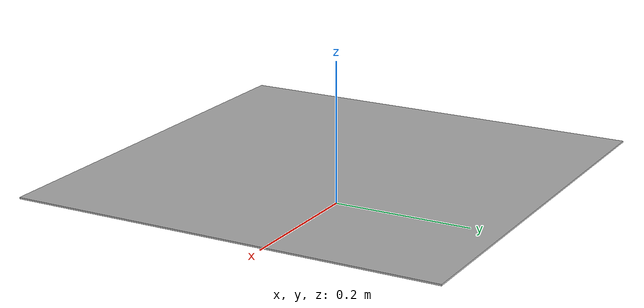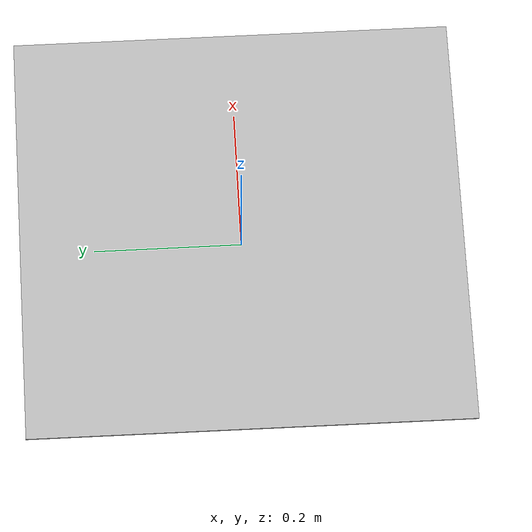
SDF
<?xml version="1.0" ?>
<sdf version="1.5">
  <model name="qrcode_cube_10cm">
    <link name="link">
      <pose>0 0 0.05 0 0 0</pose>
      <inertial>
        <mass>0.5167</mass>
        <inertia>
          <ixx>0.0008611666666666669</ixx>
          <ixy>0</ixy>
          <ixz>0</ixz>
          <iyy>0.0008611666666666669</iyy>
          <iyz>0</iyz>
          <izz>0.0008611666666666669</izz>
        </inertia>
      </inertial>

      <collision name="collision">
        <geometry>
          <box>
            <size>0.2 0.2 0.002</size>
          </box>
        </geometry>
        <surface>
          <contact>
            <poissons_ratio>0.347</poissons_ratio>
            <elastic_modulus>8.8e+09</elastic_modulus>
            <ode>
              <kp>100000</kp>
              <kd>100</kd>
              <max_vel>100.0</max_vel>
              <min_depth>0.001</min_depth>
            </ode>
          </contact>
          <friction>
            <torsional>
              <coefficient>1.0</coefficient>
              <use_patch_radius>0</use_patch_radius>
              <surface_radius>0.01</surface_radius>
            </torsional>
          </friction>
        </surface>
      </collision>

      <visual name="visual">
        <geometry>
          <box>
            <size>0.6 0.6 0.002</size>
          </box>
        </geometry>
        <material>
          <script>
            <uri>model://qrcode_cube_10cm/materials/scripts</uri>
	    <uri>model://qrcode_cube_10cm/materials/textures</uri>
            <name>Cube/QRCode</name>
          </script>
        </material>
      </visual>

    </link>
  </model>
</sdf>
